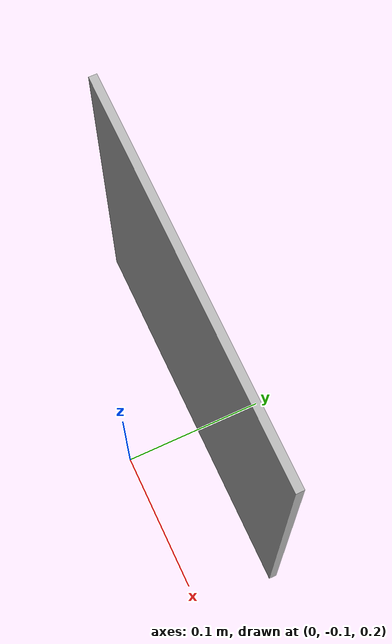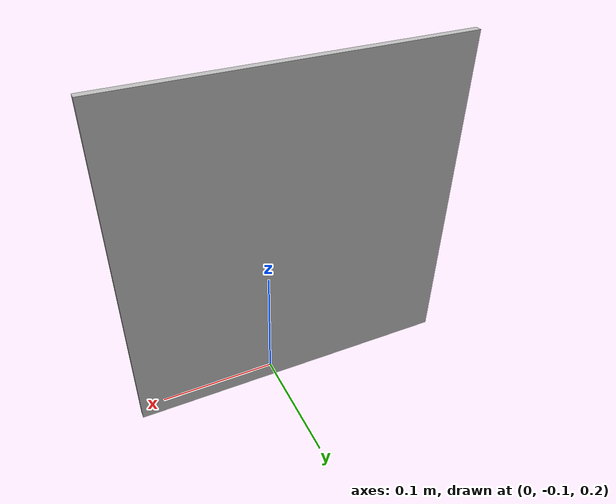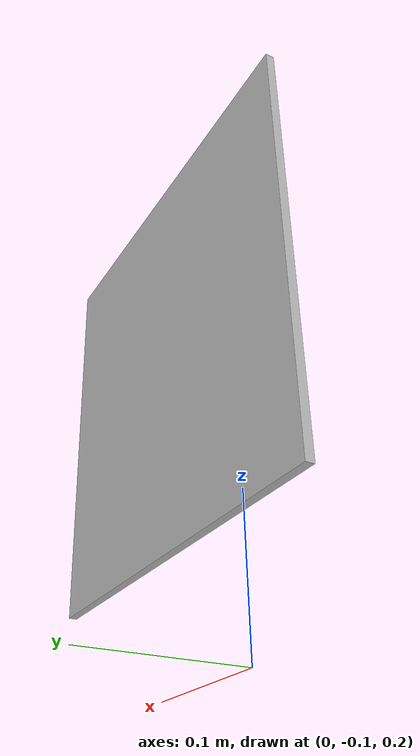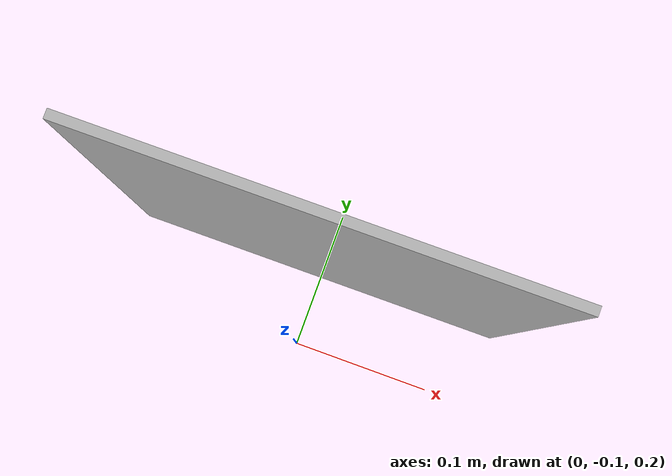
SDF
<?xml version="1.0" ?><sdf version="1.6">
  <model name="tag_02">
    <static>true</static>
    <link name="link">
      <visual name="visual">
        <geometry>
          <mesh>
            <uri>model://ar_tags/tag_02/tag.dae</uri>
          <scale>0.5 0.5 0.5</scale></mesh>
        </geometry>
      </visual>
    <pose>0 -0.05 0.25 0 0 4.71238898038469</pose></link>
  </model>
</sdf>
